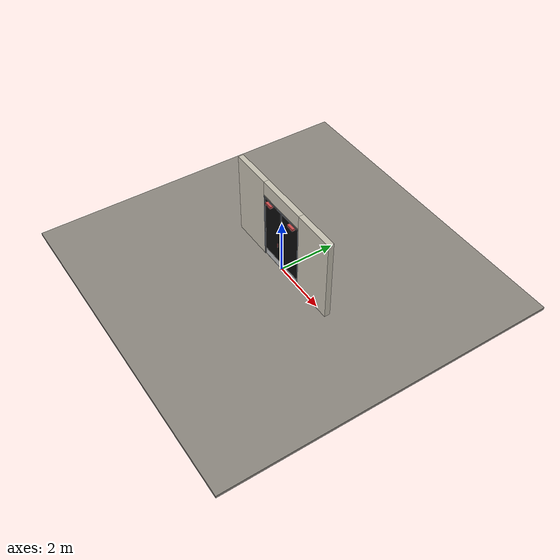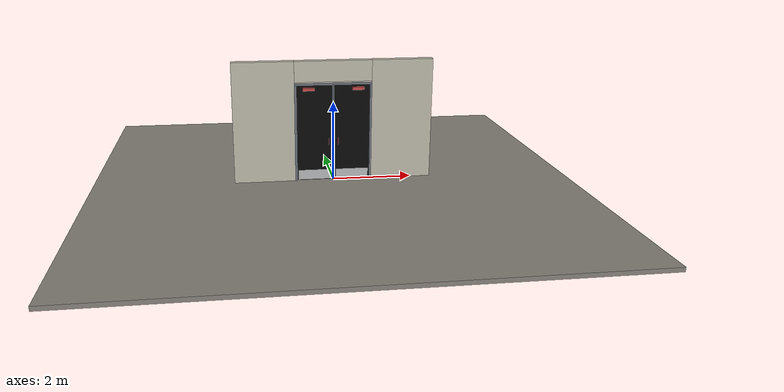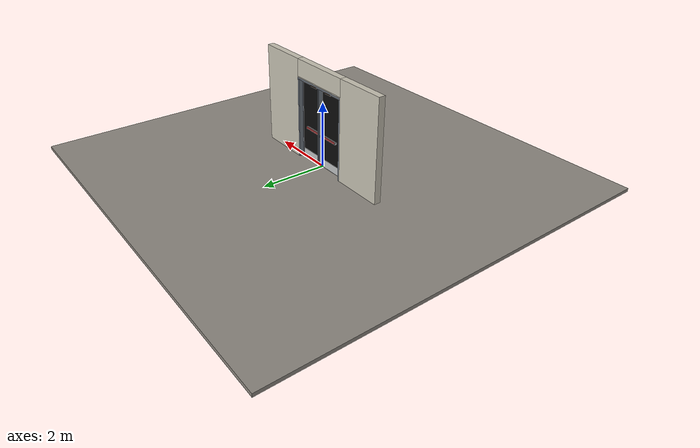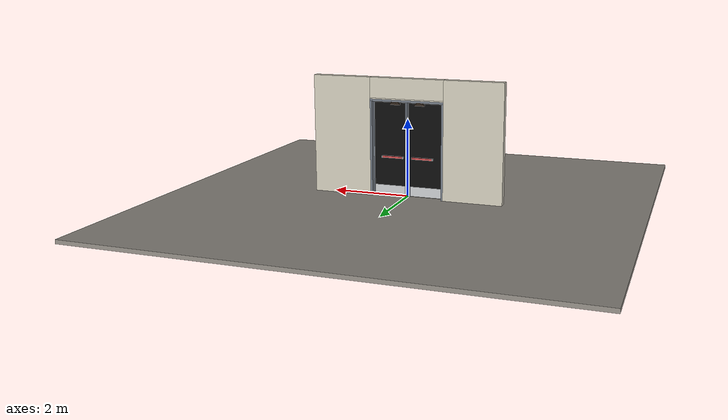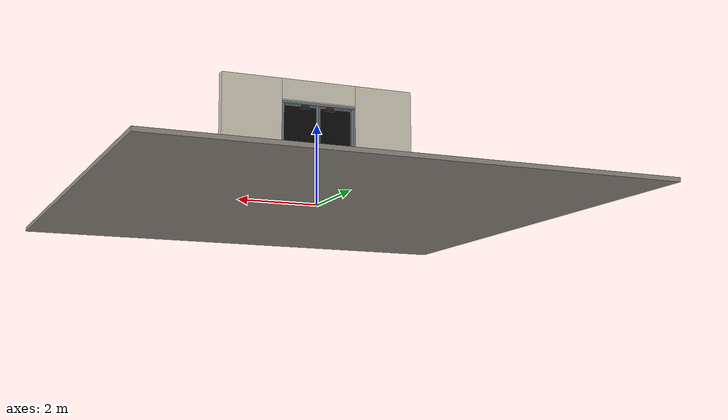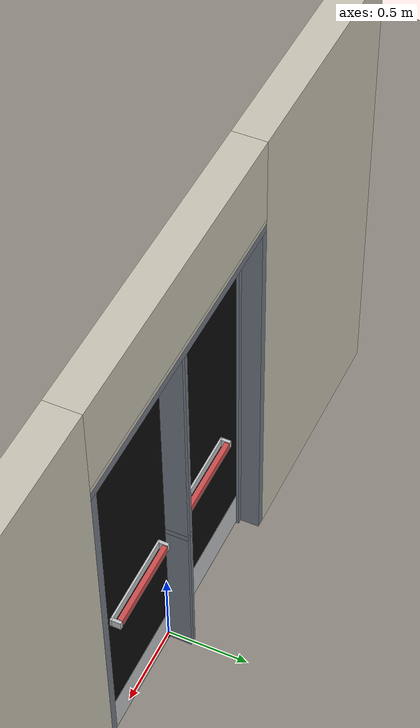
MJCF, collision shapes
<?xml version="1.0" ?>
<mujoco model="db0396_swing_double_full">
  <compiler angle="radian" meshdir="../../hardware" texturedir="../../textures" autolimits="true" inertiafromgeom="false"/>
  <option timestep="0.002" integrator="implicitfast" cone="elliptic" impratio="10" noslip_iterations="3">
    <flag multiccd="enable"/>
  </option>
  <size memory="16M"/>
  <default>
    <geom condim="4" solref="0.005 1" solimp="0.95 0.99 0.001"/>
    <joint solreflimit="0.005 1" solimplimit="0.95 0.99 0.001"/>
    <tendon solreflimit="0.005 1"/>
    <equality solref="0.002 1"/>
  </default>
  <visual>
    <headlight ambient="0.4 0.4 0.4" diffuse="0.7 0.7 0.7" specular="0.2 0.2 0.2"/>
    <quality shadowsize="4096"/>
    <map znear="0.01" zfar="60"/>
  </visual>
  <asset>
    <mesh name="closer_body_fdc4667657" file="closer_body_fdc4667657.obj"/>
    <mesh name="exit_sign_a6449bfa2c" file="exit_sign_a6449bfa2c.obj"/>
    <mesh name="hinge_e22b26c0c1" file="hinge_e22b26c0c1.obj"/>
    <mesh name="hinge_jamb_e1d088f8dc" file="hinge_jamb_e1d088f8dc.obj"/>
    <mesh name="pull_1e5d69a91a" file="pull_1e5d69a91a.obj"/>
    <mesh name="touchbar_pad_924805f6b2" file="touchbar_pad_924805f6b2.obj"/>
    <material name="mat_floor" rgba="0.55 0.53 0.5 1" specular="0.2" shininess="0.15" reflectance="0"/>
    <material name="mat_wall" rgba="0.78 0.76 0.7 1" specular="0.2" shininess="0.1" reflectance="0"/>
    <material name="mat_leaf_a" rgba="0.04 0.04 0.04 1" specular="0.2" shininess="0.36" reflectance="0"/>
    <material name="mat_hinge" rgba="0.65 0.66 0.68 1" specular="0.74" shininess="0.5" reflectance="0.36"/>
    <material name="mat_op_stainless" rgba="0.75 0.76 0.77 1" specular="0.8" shininess="0.65" reflectance="0.4"/>
    <material name="mat_bolt" rgba="0.75 0.76 0.77 1" specular="0.8" shininess="0.65" reflectance="0.4"/>
    <material name="mat_maglock" rgba="0.22 0.17 0.13 1" specular="0.8" shininess="0.6" reflectance="0.4"/>
    <material name="mat_closer" rgba="0.22 0.17 0.13 1" specular="0.8" shininess="0.6" reflectance="0.4"/>
    <material name="mat_kick" rgba="0.75 0.76 0.77 1" specular="0.8" shininess="0.65" reflectance="0.4"/>
    <material name="mat_exit_sign" rgba="0.85 0.1 0.1 1" specular="0.2" shininess="0.6" reflectance="0"/>
    <material name="mat_sign_bracket" rgba="0.8 0.81 0.83 1" specular="0.8" shininess="0.6" reflectance="0.4"/>
    <material name="mat_leaf_b" rgba="0.04 0.04 0.04 1" specular="0.2" shininess="0.36" reflectance="0"/>
    <material name="mat_frame" rgba="0.45 0.48 0.52 1" specular="0.32" shininess="0.6" reflectance="0.08"/>
    <texture name="skybox" type="skybox" builtin="gradient" rgb1="0.6 0.7 0.85" rgb2="0.9 0.92 0.95" width="256" height="256"/>
  </asset>
  <worldbody>
    <light name="sun" pos="1.5 -2.5 4" dir="-0.3 0.5 -0.8" directional="true" diffuse="0.8 0.8 0.8" specular="0.3 0.3 0.3" castshadow="true"/>
    <light name="fill" pos="-1.5 2.5 3" dir="0.3 -0.5 -0.7" directional="true" diffuse="0.35 0.35 0.4" castshadow="false"/>
    <camera name="robot_view" pos="0 -2.864813 2.043887" xyaxes="1 0 0 0 0.26963 0.962964" fovy="52"/>
    <camera name="far_view" pos="0 2.980812 2.043887" xyaxes="-1 0 0 0 -0.26963 0.962964" fovy="52"/>
    <camera name="iso" pos="-2.221337 -2.397163 2.511538" xyaxes="0.741536 -0.670913 0 0.242917 0.268487 0.932151" fovy="46"/>
    <camera name="detail_handle" pos="0.062 -0.882 1.296" xyaxes="0.97561 0.219512 0 -0.070934 0.315262 0.94635" fovy="38"/>
    <geom name="floor" type="box" size="6 6 0.05" pos="0 0 -0.05" material="mat_floor" group="0" contype="1" conaffinity="1" friction="0.8 0.005 0.0001" density="2400"/>
    <geom name="wall_left" type="box" size="0.76575 0.1 1.5255" pos="-1.73425 0.058 1.5255" material="mat_wall" group="0" contype="1" conaffinity="1" friction="0.6 0.005 0.0001" density="800"/>
    <geom name="wall_right" type="box" size="0.76575 0.1 1.5255" pos="1.73425 0.058 1.5255" material="mat_wall" group="0" contype="1" conaffinity="1" friction="0.6 0.005 0.0001" density="800"/>
    <geom name="wall_header" type="box" size="0.9685 0.1 0.26" pos="0 0.058 2.791" material="mat_wall" group="0" contype="1" conaffinity="1" friction="0.6 0.005 0.0001" density="800"/>
    <geom name="hinge_0_jamb" type="mesh" mesh="hinge_jamb_e1d088f8dc" pos="-0.9155 -0.029 0.259" material="mat_hinge" group="1" contype="0" conaffinity="0" density="7850"/>
    <geom name="hinge_1_jamb" type="mesh" mesh="hinge_jamb_e1d088f8dc" pos="-0.9155 -0.029 0.928333" material="mat_hinge" group="1" contype="0" conaffinity="0" density="7850"/>
    <geom name="hinge_2_jamb" type="mesh" mesh="hinge_jamb_e1d088f8dc" pos="-0.9155 -0.029 1.597667" material="mat_hinge" group="1" contype="0" conaffinity="0" density="7850"/>
    <geom name="hinge_3_jamb" type="mesh" mesh="hinge_jamb_e1d088f8dc" pos="-0.9155 -0.029 2.267" material="mat_hinge" group="1" contype="0" conaffinity="0" density="7850"/>
    <geom name="leaf_a_maglock_body" type="box" size="0.125 0.025 0.02" pos="-0.328 0.057 2.386" material="mat_maglock" group="0" contype="1" conaffinity="1" friction="0.6 0.005 0.0001" density="2000"/>
    <geom name="leaf_a_maglock_bracket" type="box" size="0.09 0.025 0.0225" pos="-0.328 0.057 2.4285" material="mat_maglock" group="1" contype="0" conaffinity="0" density="7850"/>
    <geom name="exit_sign" type="mesh" mesh="exit_sign_a6449bfa2c" pos="0 0.15 2.751" material="mat_exit_sign" group="2" contype="0" conaffinity="0" density="500"/>
    <geom name="hinge_0_jamb_2" type="mesh" mesh="hinge_jamb_e1d088f8dc" pos="0.9155 -0.029 0.259" quat="0 0 1 0" material="mat_hinge" group="1" contype="0" conaffinity="0" density="7850"/>
    <geom name="hinge_1_jamb_2" type="mesh" mesh="hinge_jamb_e1d088f8dc" pos="0.9155 -0.029 0.928333" quat="0 0 1 0" material="mat_hinge" group="1" contype="0" conaffinity="0" density="7850"/>
    <geom name="hinge_2_jamb_2" type="mesh" mesh="hinge_jamb_e1d088f8dc" pos="0.9155 -0.029 1.597667" quat="0 0 1 0" material="mat_hinge" group="1" contype="0" conaffinity="0" density="7850"/>
    <geom name="hinge_3_jamb_2" type="mesh" mesh="hinge_jamb_e1d088f8dc" pos="0.9155 -0.029 2.267" quat="0 0 1 0" material="mat_hinge" group="1" contype="0" conaffinity="0" density="7850"/>
    <geom name="leaf_b_maglock_body" type="box" size="0.125 0.025 0.02" pos="0.328 0.057 2.386" material="mat_maglock" group="0" contype="1" conaffinity="1" friction="0.6 0.005 0.0001" density="2000"/>
    <geom name="leaf_b_maglock_bracket" type="box" size="0.09 0.025 0.0225" pos="0.328 0.057 2.4285" material="mat_maglock" group="1" contype="0" conaffinity="0" density="7850"/>
    <geom name="jamb_l" type="box" size="0.025 0.1 1.2255" pos="-0.9435 0.058 1.2255" material="mat_frame" group="0" contype="1" conaffinity="1" friction="0.6 0.005 0.0001" density="300"/>
    <geom name="jamb_r" type="box" size="0.025 0.1 1.2255" pos="0.9435 0.058 1.2255" material="mat_frame" group="0" contype="1" conaffinity="1" friction="0.6 0.005 0.0001" density="300"/>
    <geom name="jamb_head" type="box" size="0.9685 0.1 0.025" pos="0 0.058 2.476" material="mat_frame" group="0" contype="1" conaffinity="1" friction="0.6 0.005 0.0001" density="300"/>
    <geom name="head_stud" type="box" size="0.9685 0.1 0.015" pos="0 0.058 2.516" material="mat_wall" group="0" contype="1" conaffinity="1" friction="0.6 0.005 0.0001" density="500"/>
    <geom name="stop_l" type="box" size="0.015 0.008 1.2255" pos="-0.9035 0.0305 1.2255" material="mat_frame" group="0" contype="1" conaffinity="1" friction="0.6 0.005 0.0001" density="300"/>
    <geom name="stop_r" type="box" size="0.015 0.008 1.2255" pos="0.9035 0.0305 1.2255" material="mat_frame" group="0" contype="1" conaffinity="1" friction="0.6 0.005 0.0001" density="300"/>
    <geom name="stop_head" type="box" size="0.9185 0.008 0.015" pos="0 0.0305 2.436" material="mat_frame" group="0" contype="1" conaffinity="1" friction="0.6 0.005 0.0001" density="300"/>
    <geom name="mullion_a_1016_wall_n" type="box" size="0.0125 0.07425 0.018" pos="-0.0125 0.08375 1.016" material="mat_frame" group="0" contype="1" conaffinity="1" friction="0.6 0.005 0.0001" density="300"/>
    <geom name="mullion_a_1016_wall_p" type="box" size="0.0125 0.008 0.018" pos="-0.0125 -0.0175 1.016" material="mat_frame" group="0" contype="1" conaffinity="1" friction="0.6 0.005 0.0001" density="300"/>
    <geom name="mullion_a_1016_ramp" type="box" size="0.0125 0.02081 0.018" pos="-0.004038 -0.037743 1.016" quat="0.968756 0 0 0.248016" material="mat_frame" group="0" contype="1" conaffinity="1" friction="0.12 0.005 0.0001" density="300"/>
    <geom name="mullion_a_1016_back" type="box" size="0.002 0.0095 0.018" pos="0 0 1.016" material="mat_frame" group="0" contype="1" conaffinity="1" friction="0.6 0.005 0.0001" density="300"/>
    <geom name="mullion_a_seg_0" type="box" size="0.0125 0.1 0.499" pos="-0.0125 0.058 0.499" material="mat_frame" group="0" contype="1" conaffinity="1" friction="0.6 0.005 0.0001" density="300"/>
    <geom name="mullion_a_seg_1" type="box" size="0.0125 0.1 0.7085" pos="-0.0125 0.058 1.7425" material="mat_frame" group="0" contype="1" conaffinity="1" friction="0.6 0.005 0.0001" density="300"/>
    <geom name="mullion_b_1016_wall_n" type="box" size="0.0125 0.07425 0.018" pos="0.0125 0.08375 1.016" material="mat_frame" group="0" contype="1" conaffinity="1" friction="0.6 0.005 0.0001" density="300"/>
    <geom name="mullion_b_1016_wall_p" type="box" size="0.0125 0.008 0.018" pos="0.0125 -0.0175 1.016" material="mat_frame" group="0" contype="1" conaffinity="1" friction="0.6 0.005 0.0001" density="300"/>
    <geom name="mullion_b_1016_ramp" type="box" size="0.0125 0.02081 0.018" pos="0.004038 -0.037743 1.016" quat="0.968756 0 0 -0.248016" material="mat_frame" group="0" contype="1" conaffinity="1" friction="0.12 0.005 0.0001" density="300"/>
    <geom name="mullion_b_seg_0" type="box" size="0.0125 0.1 0.499" pos="0.0125 0.058 0.499" material="mat_frame" group="0" contype="1" conaffinity="1" friction="0.6 0.005 0.0001" density="300"/>
    <geom name="mullion_b_seg_1" type="box" size="0.0125 0.1 0.7085" pos="0.0125 0.058 1.7425" material="mat_frame" group="0" contype="1" conaffinity="1" friction="0.6 0.005 0.0001" density="300"/>
    <site name="approach_point" pos="0 -1.5 0" quat="1 0 0 0" size="0.05" rgba="0.2 0.9 0.2 0.5" group="4"/>
    <site name="goal_point" pos="0 1.5 0" quat="1 0 0 0" size="0.05" rgba="0.2 0.9 0.2 0.5" group="4"/>
    <site name="door_plane_center" pos="0 0 1.2255" quat="1 0 0 0" size="0.02" rgba="0.2 0.9 0.2 0.5" group="4"/>
    <site name="approach_point_2" pos="0 -1.5 0" quat="1 0 0 0" size="0.05" rgba="0.2 0.9 0.2 0.5" group="4"/>
    <site name="goal_point_2" pos="0 1.5 0" quat="1 0 0 0" size="0.05" rgba="0.2 0.9 0.2 0.5" group="4"/>
    <site name="door_plane_center_2" pos="0 0 1.2255" quat="1 0 0 0" size="0.02" rgba="0.2 0.9 0.2 0.5" group="4"/>
    <site name="approach_point_3" pos="0 -1.5 0" quat="1 0 0 0" size="0.05" rgba="0.2 0.9 0.2 0.5" group="4"/>
    <site name="goal_point_3" pos="0 1.5 0" quat="1 0 0 0" size="0.05" rgba="0.2 0.9 0.2 0.5" group="4"/>
    <site name="door_plane_center_3" pos="0 0 1.2255" quat="1 0 0 0" size="0.02" rgba="0.2 0.9 0.2 0.5" group="4"/>
    <body name="leaf_a" pos="-0.9185 0 0">
      <inertial pos="0.421412 -0.011858 1.355507" mass="67.304084" quat="-0.49847 0.480547 0.51008 0.510315" diaginertia="3.993939768 43.68945968 47.570441985"/>
      <joint name="leaf_a_hinge" type="hinge" axis="0 0 -1" pos="0.003 -0.029 0" limited="true" range="0 1.570796" solreflimit="0.02 1" damping="12.307281" frictionloss="1.903291" stiffness="14.514931" springref="-2.059948" armature="0.02"/>
      <geom name="leaf_a_slab" type="box" size="0.44375 0.022 1.219" pos="0.44675 0 1.228" material="mat_leaf_a" group="0" contype="1" conaffinity="1" friction="0.4 0.005 0.0001" density="1"/>
      <geom name="hinge_0" type="mesh" mesh="hinge_e22b26c0c1" pos="0.003 -0.029 0.259" material="mat_hinge" group="1" contype="0" conaffinity="0" density="7850"/>
      <geom name="hinge_1" type="mesh" mesh="hinge_e22b26c0c1" pos="0.003 -0.029 0.928333" material="mat_hinge" group="1" contype="0" conaffinity="0" density="7850"/>
      <geom name="hinge_2" type="mesh" mesh="hinge_e22b26c0c1" pos="0.003 -0.029 1.597667" material="mat_hinge" group="1" contype="0" conaffinity="0" density="7850"/>
      <geom name="hinge_3" type="mesh" mesh="hinge_e22b26c0c1" pos="0.003 -0.029 2.267" material="mat_hinge" group="1" contype="0" conaffinity="0" density="7850"/>
      <geom name="leaf_a_exit_device_rail" type="box" size="0.28625 0.006 0.025" pos="0.52425 0.028 1.016" material="mat_op_stainless" group="0" contype="1" conaffinity="1" friction="0.6 0.005 0.0001" density="3000"/>
      <geom name="leaf_a_exit_device_rail_end_n" type="box" size="0.01 0.0325 0.025" pos="0.248 0.0545 1.016" material="mat_op_stainless" group="0" contype="1" conaffinity="1" friction="0.6 0.005 0.0001" density="3000"/>
      <geom name="leaf_a_exit_device_rail_end_p" type="box" size="0.01 0.0325 0.025" pos="0.8005 0.0545 1.016" material="mat_op_stainless" group="0" contype="1" conaffinity="1" friction="0.6 0.005 0.0001" density="3000"/>
      <geom name="leaf_a_far_pull_n" type="mesh" mesh="pull_1e5d69a91a" pos="0.8005 -0.022 1.016" quat="0.707107 0.707107 0 0" material="mat_op_stainless" group="1" contype="0" conaffinity="0" density="3000"/>
      <geom name="leaf_a_far_pull_col_n" type="capsule" size="0.0095 0.08" pos="0.8005 -0.082 1.016" material="mat_op_stainless" group="3" contype="1" conaffinity="1" rgba="0.8 0.3 0.3 0.25" friction="0.7 0.01 0.0001" density="3000"/>
      <geom name="leaf_a_latch_bolt_faceplate" type="box" size="0.0006 0.014 0.028" pos="0.8899 0 1.016" material="mat_bolt" group="1" contype="0" conaffinity="0" density="8500"/>
      <geom name="leaf_a_maglock_armature" type="box" size="0.09 0.005 0.02" pos="0.5905 0.027 2.386" material="mat_maglock" group="1" contype="0" conaffinity="0" density="7800"/>
      <geom name="closer_body" type="mesh" mesh="closer_body_fdc4667657" pos="0.3 -0.022 2.358" quat="0.707107 0.707107 0 0" material="mat_closer" group="1" contype="0" conaffinity="0" density="2000"/>
      <geom name="closer_body_col" type="box" size="0.145 0.05 0.035" pos="0.3 -0.072 2.358" material="mat_closer" group="3" contype="1" conaffinity="1" rgba="0.8 0.3 0.3 0.25" friction="0.6 0.005 0.0001" density="2000"/>
      <geom name="kick_plate_n" type="box" size="0.41375 0.0008 0.125" pos="0.44675 -0.0228 0.144" material="mat_kick" group="2" contype="0" conaffinity="0" density="7900"/>
      <geom name="kick_plate_p" type="box" size="0.41375 0.0008 0.125" pos="0.44675 0.0228 0.144" material="mat_kick" group="2" contype="0" conaffinity="0" density="7900"/>
      <site name="leaf_a_far_pull_grip_n" pos="0.8005 -0.082 1.016" quat="1 0 0 0" size="0.012" rgba="0.2 0.9 0.2 0.5" group="4"/>
      <site name="leaf_a_edge_mid" pos="0.8905 0 1.219" quat="1 0 0 0" size="0.02" rgba="0.2 0.9 0.2 0.5" group="4"/>
      <body name="leaf_a_exit_device" pos="0.52425 0.022 1.016">
        <inertial pos="0 0.05 0" mass="4.26465" quat="0.707107 -0.707107 0 0" diaginertia="0.001039508 0.098834063 0.099233874"/>
        <joint name="leaf_a_exit_device_slide" type="slide" axis="0 -1 0" limited="true" range="0 0.016" damping="151.51297" frictionloss="0.5" stiffness="1300" springref="-0.015385" armature="0.15"/>
        <geom name="leaf_a_exit_device_pad" type="mesh" mesh="touchbar_pad_924805f6b2" pos="0 0 0" quat="-0.707107 0.707107 0 0" material="mat_op_stainless" group="1" contype="0" conaffinity="0" density="3000"/>
        <geom name="leaf_a_exit_device_pad_col" type="box" size="0.26325 0.015 0.0225" pos="0 0.05 0" material="mat_op_stainless" group="3" contype="1" conaffinity="1" rgba="0.8 0.3 0.3 0.25" friction="0.8 0.01 0.0001" density="3000"/>
        <site name="leaf_a_exit_device_push" pos="0 0.065 0" quat="1 0 0 0" size="0.015" rgba="0.2 0.9 0.2 0.5" group="4"/>
      </body>
      <body name="leaf_a_latch_bolt" pos="0.8905 0 1.016">
        <inertial pos="-0.0055 0 0" mass="0.074627" quat="0.92388 -0.382683 0 0" diaginertia="0.000002271 0.000013255 0.000013255"/>
        <joint name="leaf_a_latch_bolt_slide" type="slide" axis="-1 0 0" limited="true" range="0 0.019" damping="2" frictionloss="0.3" stiffness="550" springref="-0.01" armature="0.1"/>
        <geom name="leaf_a_latch_bolt_capsule" type="capsule" size="0.008 0.0165" pos="-0.0055 0 0" quat="0.707107 0 0.707107 0" material="mat_bolt" group="0" contype="1" conaffinity="1" friction="0.2 0.005 0.0001" density="8500"/>
      </body>
    </body>
    <body name="leaf_b" pos="0.9185 0 0">
      <inertial pos="-0.421412 -0.011858 1.355507" mass="67.304084" quat="0.510315 -0.51008 -0.480547 -0.49847" diaginertia="3.993939768 43.68945968 47.570441985"/>
      <joint name="leaf_b_hinge" type="hinge" axis="0 0 1" pos="-0.003 -0.029 0" limited="true" range="0 1.570796" solreflimit="0.02 1" damping="12.307281" frictionloss="1.903291" stiffness="14.514931" springref="-2.059948" armature="0.02"/>
      <geom name="leaf_b_slab" type="box" size="0.44375 0.022 1.219" pos="-0.44675 0 1.228" material="mat_leaf_b" group="0" contype="1" conaffinity="1" friction="0.4 0.005 0.0001" density="1"/>
      <geom name="hinge_0_2" type="mesh" mesh="hinge_e22b26c0c1" pos="-0.003 -0.029 0.259" quat="0 0 1 0" material="mat_hinge" group="1" contype="0" conaffinity="0" density="7850"/>
      <geom name="hinge_1_2" type="mesh" mesh="hinge_e22b26c0c1" pos="-0.003 -0.029 0.928333" quat="0 0 1 0" material="mat_hinge" group="1" contype="0" conaffinity="0" density="7850"/>
      <geom name="hinge_2_2" type="mesh" mesh="hinge_e22b26c0c1" pos="-0.003 -0.029 1.597667" quat="0 0 1 0" material="mat_hinge" group="1" contype="0" conaffinity="0" density="7850"/>
      <geom name="hinge_3_2" type="mesh" mesh="hinge_e22b26c0c1" pos="-0.003 -0.029 2.267" quat="0 0 1 0" material="mat_hinge" group="1" contype="0" conaffinity="0" density="7850"/>
      <geom name="leaf_b_exit_device_rail" type="box" size="0.28625 0.006 0.025" pos="-0.52425 0.028 1.016" material="mat_op_stainless" group="0" contype="1" conaffinity="1" friction="0.6 0.005 0.0001" density="3000"/>
      <geom name="leaf_b_exit_device_rail_end_n" type="box" size="0.01 0.0325 0.025" pos="-0.8005 0.0545 1.016" material="mat_op_stainless" group="0" contype="1" conaffinity="1" friction="0.6 0.005 0.0001" density="3000"/>
      <geom name="leaf_b_exit_device_rail_end_p" type="box" size="0.01 0.0325 0.025" pos="-0.248 0.0545 1.016" material="mat_op_stainless" group="0" contype="1" conaffinity="1" friction="0.6 0.005 0.0001" density="3000"/>
      <geom name="leaf_b_far_pull_n" type="mesh" mesh="pull_1e5d69a91a" pos="-0.8005 -0.022 1.016" quat="0 0 -0.707107 0.707107" material="mat_op_stainless" group="1" contype="0" conaffinity="0" density="3000"/>
      <geom name="leaf_b_far_pull_col_n" type="capsule" size="0.0095 0.08" pos="-0.8005 -0.082 1.016" material="mat_op_stainless" group="3" contype="1" conaffinity="1" rgba="0.8 0.3 0.3 0.25" friction="0.7 0.01 0.0001" density="3000"/>
      <geom name="leaf_b_latch_bolt_faceplate" type="box" size="0.0006 0.014 0.028" pos="-0.8899 0 1.016" material="mat_bolt" group="1" contype="0" conaffinity="0" density="8500"/>
      <geom name="leaf_b_maglock_armature" type="box" size="0.09 0.005 0.02" pos="-0.5905 0.027 2.386" material="mat_maglock" group="1" contype="0" conaffinity="0" density="7800"/>
      <geom name="closer_body_2" type="mesh" mesh="closer_body_fdc4667657" pos="-0.3 -0.022 2.358" quat="0 0 -0.707107 0.707107" material="mat_closer" group="1" contype="0" conaffinity="0" density="2000"/>
      <geom name="closer_body_col_2" type="box" size="0.145 0.05 0.035" pos="-0.3 -0.072 2.358" material="mat_closer" group="3" contype="1" conaffinity="1" rgba="0.8 0.3 0.3 0.25" friction="0.6 0.005 0.0001" density="2000"/>
      <geom name="kick_plate_n_2" type="box" size="0.41375 0.0008 0.125" pos="-0.44675 -0.0228 0.144" material="mat_kick" group="2" contype="0" conaffinity="0" density="7900"/>
      <geom name="kick_plate_p_2" type="box" size="0.41375 0.0008 0.125" pos="-0.44675 0.0228 0.144" material="mat_kick" group="2" contype="0" conaffinity="0" density="7900"/>
      <site name="leaf_b_far_pull_grip_n" pos="-0.8005 -0.082 1.016" quat="1 0 0 0" size="0.012" rgba="0.2 0.9 0.2 0.5" group="4"/>
      <site name="leaf_b_edge_mid" pos="-0.8905 0 1.219" quat="1 0 0 0" size="0.02" rgba="0.2 0.9 0.2 0.5" group="4"/>
      <body name="leaf_b_exit_device" pos="-0.52425 0.022 1.016">
        <inertial pos="0 0.05 0" mass="4.26465" quat="0 0 0.707107 0.707107" diaginertia="0.001039508 0.098834063 0.099233874"/>
        <joint name="leaf_b_exit_device_slide" type="slide" axis="0 -1 0" limited="true" range="0 0.016" damping="151.51297" frictionloss="0.5" stiffness="1300" springref="-0.015385" armature="0.15"/>
        <geom name="leaf_b_exit_device_pad" type="mesh" mesh="touchbar_pad_924805f6b2" pos="0 0 0" quat="0 0 0.707107 0.707107" material="mat_op_stainless" group="1" contype="0" conaffinity="0" density="3000"/>
        <geom name="leaf_b_exit_device_pad_col" type="box" size="0.26325 0.015 0.0225" pos="0 0.05 0" material="mat_op_stainless" group="3" contype="1" conaffinity="1" rgba="0.8 0.3 0.3 0.25" friction="0.8 0.01 0.0001" density="3000"/>
        <site name="leaf_b_exit_device_push" pos="0 0.065 0" quat="1 0 0 0" size="0.015" rgba="0.2 0.9 0.2 0.5" group="4"/>
      </body>
      <body name="leaf_b_latch_bolt" pos="-0.8905 0 1.016">
        <inertial pos="0.0055 0 0" mass="0.074627" quat="0.92388 0.382683 0 0" diaginertia="0.000002271 0.000013255 0.000013255"/>
        <joint name="leaf_b_latch_bolt_slide" type="slide" axis="1 0 0" limited="true" range="0 0.019" damping="2" frictionloss="0.3" stiffness="550" springref="-0.01" armature="0.1"/>
        <geom name="leaf_b_latch_bolt_capsule" type="capsule" size="0.008 0.0165" pos="0.0055 0 0" quat="0.707107 0 -0.707107 0" material="mat_bolt" group="0" contype="1" conaffinity="1" friction="0.2 0.005 0.0001" density="8500"/>
      </body>
    </body>
  </worldbody>
  <tendon>
    <fixed name="leaf_a_latch_bolt_coupling" limited="true" range="0 10">
      <joint joint="leaf_a_latch_bolt_slide" coef="1"/>
      <joint joint="leaf_a_exit_device_slide" coef="-1.357143"/>
    </fixed>
    <fixed name="leaf_b_latch_bolt_coupling" limited="true" range="0 10">
      <joint joint="leaf_b_latch_bolt_slide" coef="1"/>
      <joint joint="leaf_b_exit_device_slide" coef="-1.357143"/>
    </fixed>
  </tendon>
  <equality>
    <weld name="leaf_a_maglock" body1="leaf_a" body2="world" active="true"/>
    <weld name="leaf_b_maglock" body1="leaf_b" body2="world" active="true"/>
  </equality>
  <sensor>
    <jointpos name="leaf_a_hinge_pos" joint="leaf_a_hinge"/>
    <jointvel name="leaf_a_hinge_vel" joint="leaf_a_hinge"/>
    <jointpos name="leaf_a_exit_device_slide_pos" joint="leaf_a_exit_device_slide"/>
    <jointvel name="leaf_a_exit_device_slide_vel" joint="leaf_a_exit_device_slide"/>
    <jointpos name="leaf_a_latch_bolt_slide_pos" joint="leaf_a_latch_bolt_slide"/>
    <jointvel name="leaf_a_latch_bolt_slide_vel" joint="leaf_a_latch_bolt_slide"/>
    <jointpos name="leaf_b_hinge_pos" joint="leaf_b_hinge"/>
    <jointvel name="leaf_b_hinge_vel" joint="leaf_b_hinge"/>
    <jointpos name="leaf_b_exit_device_slide_pos" joint="leaf_b_exit_device_slide"/>
    <jointvel name="leaf_b_exit_device_slide_vel" joint="leaf_b_exit_device_slide"/>
    <jointpos name="leaf_b_latch_bolt_slide_pos" joint="leaf_b_latch_bolt_slide"/>
    <jointvel name="leaf_b_latch_bolt_slide_vel" joint="leaf_b_latch_bolt_slide"/>
  </sensor>
</mujoco>
